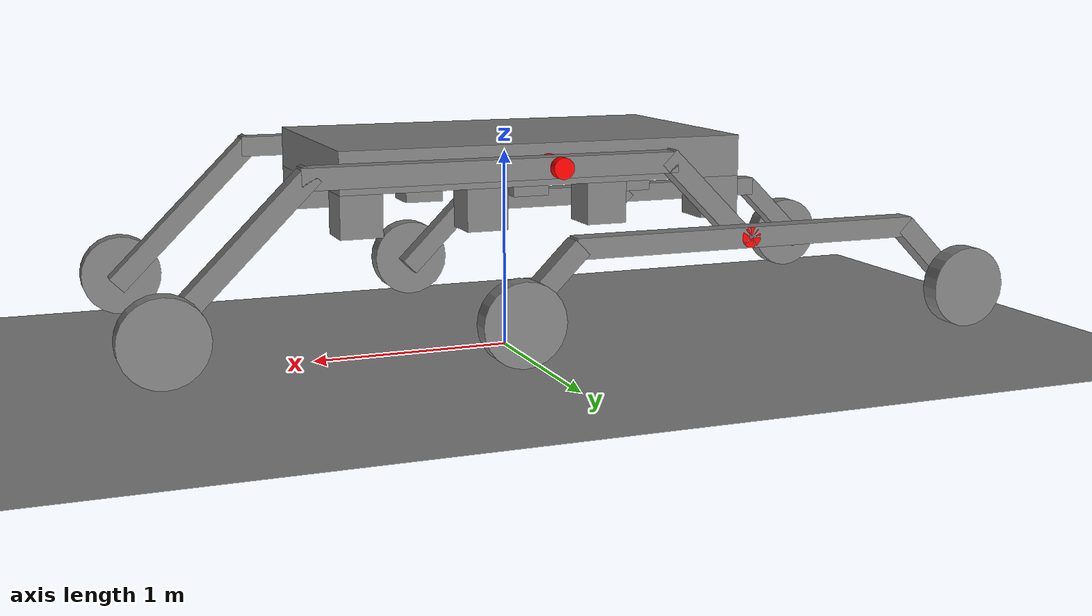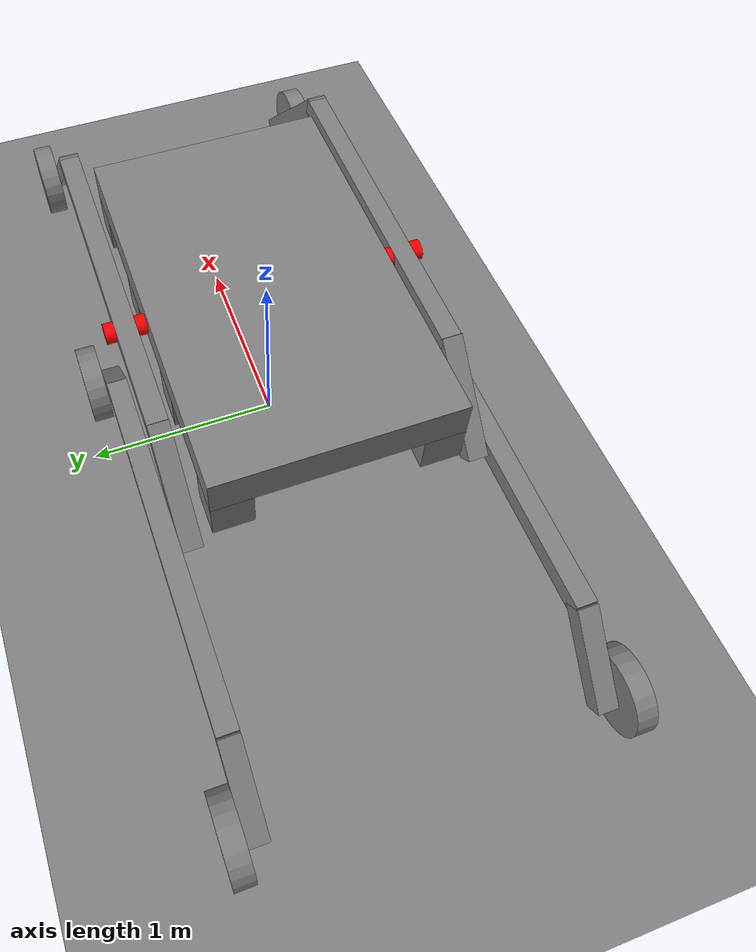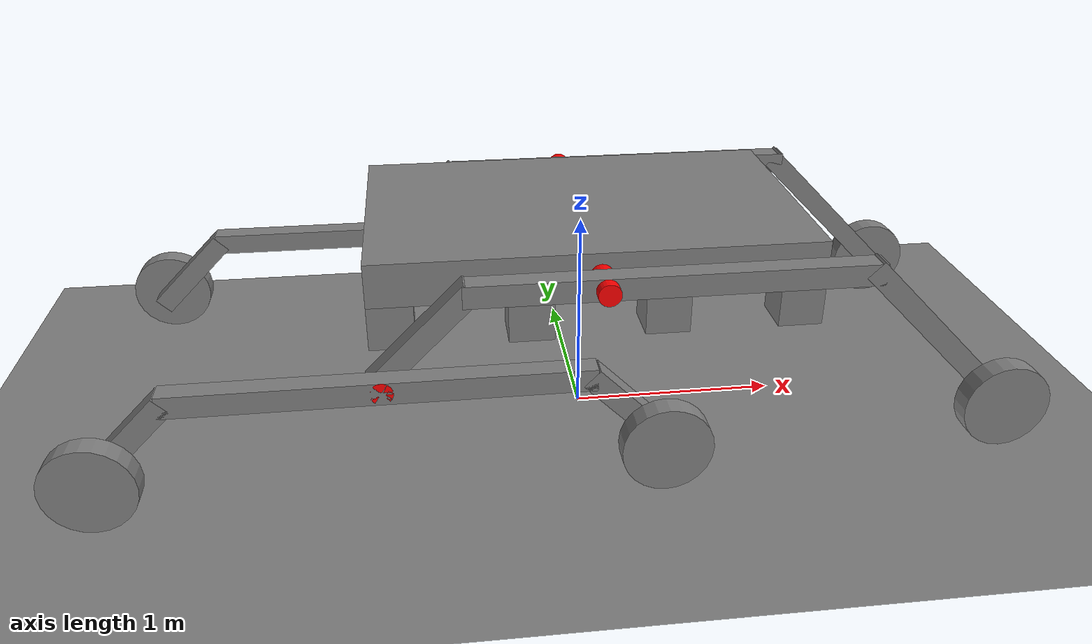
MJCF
<?xml version='1.0' encoding='UTF-8'?>
<mujoco>

	<option timestep="1e-4"/>
	<option gravity="0 0 -9.8"/>

    <worldbody>

        <!--Polygon-->
        <body name="floor" pos="0 0 0">
            <geom type="plane" size="10 10 0.1"/>
        </body>
        <!--Rover starts here-->
        <!--Base body-->
        <body pos = "0 0 1">
            <joint name = "cart" type = "free"/>
            <geom type = "box" size = "1 0.6 0.1"/>
            <geom type = "box" size = "0.1 0.1 0.1" pos = "0.9 0.5 -0.2"/>
            <geom type = "box" size = "0.1 0.1 0.1" pos = "0.3 0.5 -0.2"/>
            <geom type = "box" size = "0.1 0.1 0.1" pos = "-0.3 0.5 -0.2"/>
            <geom type = "box" size = "0.1 0.1 0.1" pos = "-0.9 0.5 -0.2"/>
            <geom type = "box" size = "0.1 0.1 0.1" pos = "0.9 -0.5 -0.2"/>
            <geom type = "box" size = "0.1 0.1 0.1" pos = "0.3 -0.5 -0.2"/>
            <geom type = "box" size = "0.1 0.1 0.1" pos = "-0.3 -0.5 -0.2"/>
            <geom type = "box" size = "0.1 0.1 0.1" pos = "-0.9 -0.5 -0.2"/>

            <!--First Pair-->
            <body pos = "0 0.7 0">
                <joint type = "hinge" axis = "0 1 0"/>
                <geom type = "cylinder" size = "0.05 0.1" euler = "90 0 0" rgba = "1 0 0 1"/>
                <body pos = "0.3 0 0">
                    <geom type = "box" size = "0.9 0.05 0.05"/>
                    <body  pos = "1.2 0 -0.33" euler = "0 45 0">
                        <geom type = "box" size = "0.5 0.05 0.05"/>
                        <body pos = "0.45 0.1 0">
                            <joint name = "wheelLLead" type = "hinge" axis = "0 1 0"/>
                            <geom type = "cylinder" size = "0.2 0.05" euler = "90 0 0"/>
                        </body>
                    </body>
                    <body  pos = "-1.07 0 -0.19" euler = "0 -45 0">
                        <geom type = "box" size = "0.3 0.05 0.05"/>
                        <body pos = "-0.25 0.1 0">
                            <joint type = "hinge" axis = "0 1 0"/>
                            <geom type = "cylinder" size = "0.05 0.05" euler = "90 0 0" rgba = "1 0 0 1"/>
                            <body euler = "0 45 0">
                                <geom type = "box" size = "0.9 0.05 0.05"/>
                                <body pos = "1.05 0 -0.17" euler = "0 45 0">
                                    <geom type = "box" size = "0.25 0.05 0.05"/>
                                    <body pos = "0.2 0.1 0">
                                        <joint name = "wheelLMid" type = "hinge" axis = "0 1 0"/>
                                        <geom type = "cylinder" size = "0.2 0.05" euler = "90 0 0"/>
                                    </body>
                                </body>
                                <body pos = "-1.05 0 -0.17" euler = "0 -45 0">
                                    <geom type = "box" size = "0.25 0.05 0.05"/>
                                    <body pos = "-0.2 0.1 0">
                                        <joint name = "wheelLEnd" type = "hinge" axis = "0 1 0"/>
                                        <geom type = "cylinder" size = "0.2 0.05" euler = "90 0 0"/>
                                    </body>
                                </body>
                            </body>
                        </body>
                    </body>
                </body>
            </body>

            <!--Second Pair-->
            <body pos = "0 -0.7 0">
                <joint type = "hinge" axis = "0 1 0"/>
                <geom type = "cylinder" size = "0.05 0.1" euler = "90 0 0" rgba = "1 0 0 1"/>
                <body pos = "0.3 0 0">
                    <geom type = "box" size = "0.9 0.05 0.05"/>
                    <body  pos = "1.2 0 -0.33" euler = "0 45 0">
                        <geom type = "box" size = "0.5 0.05 0.05"/>
                        <body pos = "0.45 -0.1 0">
                            <joint name = "wheelRLead" type = "hinge" axis = "0 1 0"/>
                            <geom type = "cylinder" size = "0.2 0.05" euler = "90 0 0"/>
                        </body>
                    </body>
                    <body  pos = "-1.07 0 -0.19" euler = "0 -45 0">
                        <geom type = "box" size = "0.3 0.05 0.05"/>
                        <body pos = "-0.25 -0.1 0">
                            <joint type = "hinge" axis = "0 1 0"/>
                            <geom type = "cylinder" size = "0.05 0.05" euler = "90 0 0" rgba = "1 0 0 1"/>
                            <body euler = "0 45 0">
                                <geom type = "box" size = "0.9 0.05 0.05"/>
                                <body pos = "1.05 0 -0.17" euler = "0 45 0">
                                    <geom type = "box" size = "0.25 0.05 0.05"/>
                                    <body pos = "0.2 -0.1 0">
                                        <joint name = "wheelRMid" type = "hinge" axis = "0 1 0"/>
                                        <geom type = "cylinder" size = "0.2 0.05" euler = "90 0 0"/>
                                    </body>
                                </body>
                                <body pos = "-1.05 0 -0.17" euler = "0 -45 0">
                                    <geom type = "box" size = "0.25 0.05 0.05"/>
                                    <body pos = "-0.2 -0.1 0">
                                        <joint name = "wheelREnd" type = "hinge" axis = "0 1 0"/>
                                        <geom type = "cylinder" size = "0.2 0.05" euler = "90 0 0"/>
                                    </body>
                                </body>
                            </body>
                        </body>
                    </body>
                </body>
            </body>

        </body>
    </worldbody>

    <actuator>
        <motor name="firstMotor" joint="wheelLLead" ctrllimited="true" ctrlrange="-100 100" gear="20"/>
        <motor name="secondMotor" joint="wheelLMid" ctrllimited="true" ctrlrange="-100 100" gear="20"/>
        <motor name="thirdMotor" joint="wheelLEnd" ctrllimited="true" ctrlrange="-100 100" gear="20"/>
        <motor name="fourthMotor" joint="wheelRLead" ctrllimited="true" ctrlrange="-100 100" gear="20"/>
        <motor name="fifthMotor" joint="wheelRMid" ctrllimited="true" ctrlrange="-100 100" gear="20"/>
        <motor name="sixthMotor" joint="wheelREnd" ctrllimited="true" ctrlrange="-100 100" gear="20"/>
    </actuator>

</mujoco>
